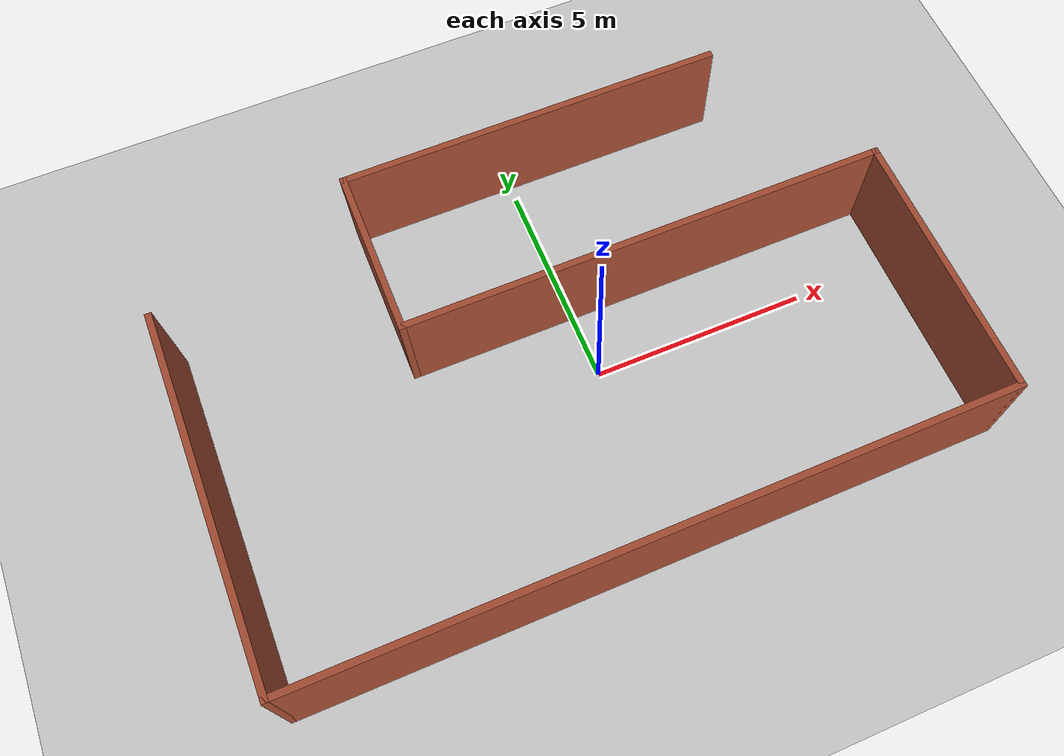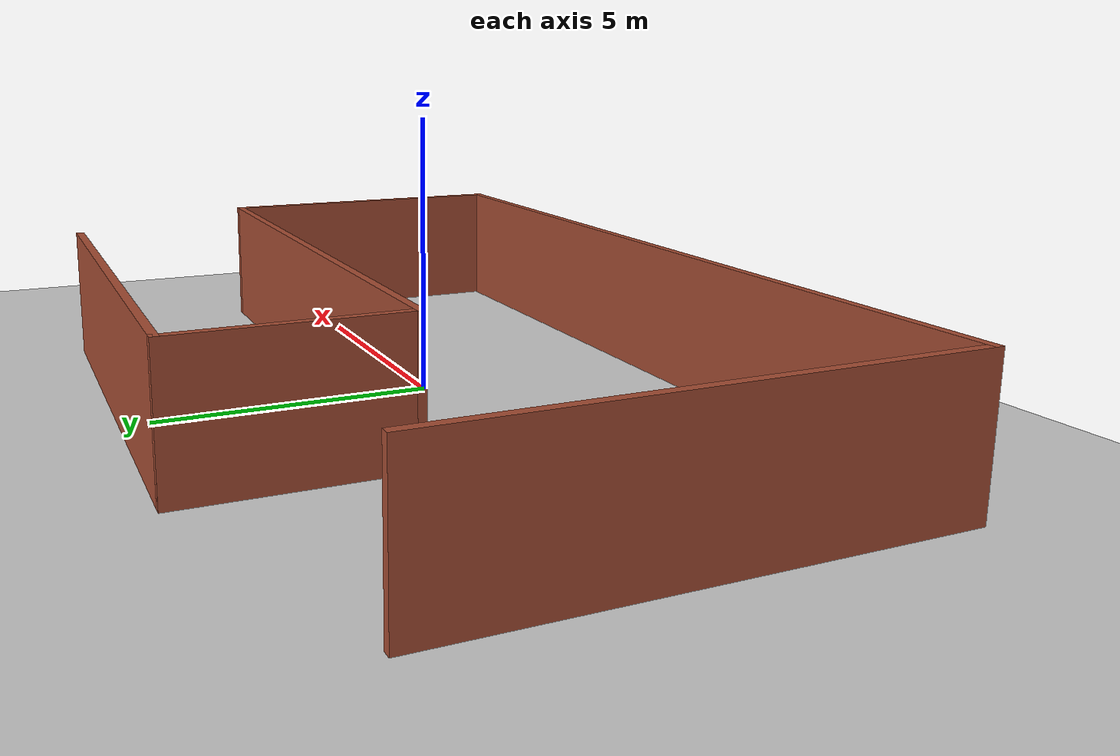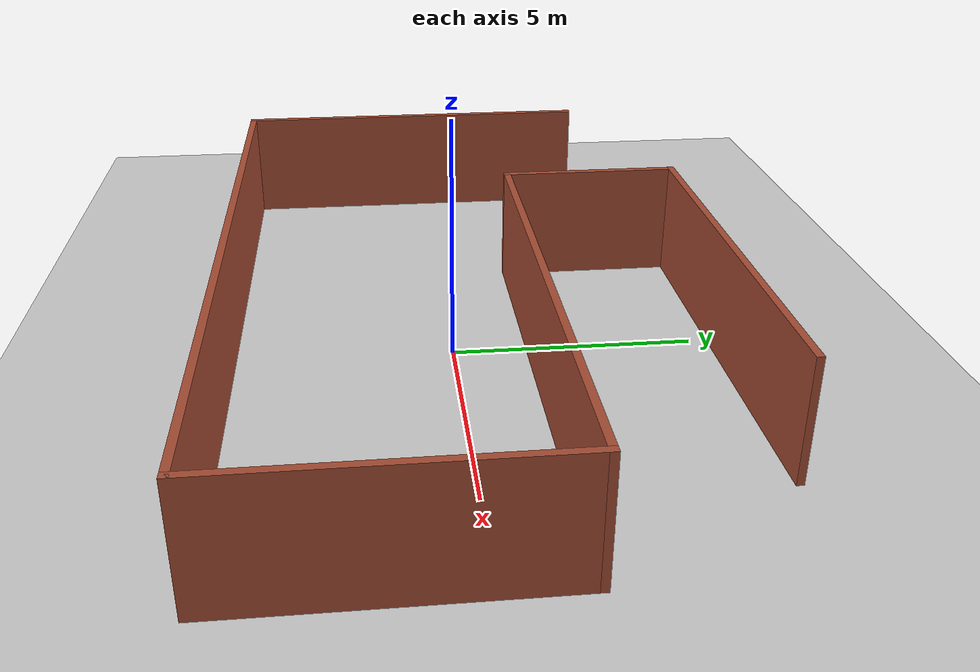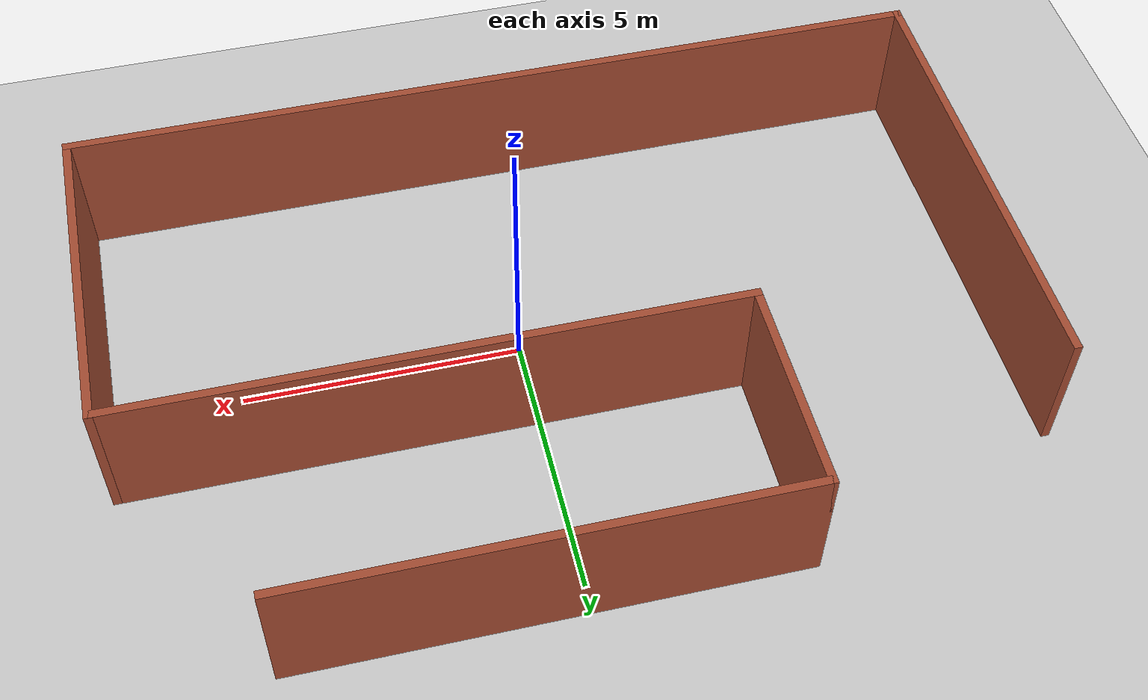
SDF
<sdf version="1.6">
 <world name="default">
  <light name="sun" type="directional">
   <pose>0 0 10 0 -0 0</pose>
   <diffuse>0.8 0.8 0.8 1</diffuse>
   <specular>0.2 0.2 0.2 1</specular>
   <attenuation>
    <range>1000</range>
    <constant>0.9</constant>
    <linear>0.01</linear>
    <quadratic>0.001</quadratic>
   </attenuation>
   <direction>-0.5 0.1 -0.9</direction>
  </light>
  <model name="ground_plane">
   <static>1</static>
   <link name="link">
    <collision name="collision">
     <geometry><plane><normal>0 0 1</normal><size>100 100</size></plane></geometry>
     <surface>
      <contact><collide_bitmask>65535</collide_bitmask></contact>
      <friction><ode><mu>100</mu><mu2>50</mu2></ode></friction>
     </surface>
    </collision>
    <visual name="visual">
     <cast_shadows>0</cast_shadows>
     <geometry><plane><normal>0 0 1</normal><size>100 100</size></plane></geometry>
     <material>
      <script><uri>file://media/materials/scripts/gazebo.material</uri><name>Gazebo/Grey</name></script>
     </material>
    </visual>
   </link>
  </model>
  <gravity>0 0 -9.8</gravity>
  <magnetic_field>6e-06 2.3e-05 -4.2e-05</magnetic_field>
  <atmosphere type="adiabatic"/>
  <physics name="default_physics" default="0" type="ode">
   <max_step_size>0.001</max_step_size>
   <real_time_factor>1</real_time_factor>
   <real_time_update_rate>1000</real_time_update_rate>
  </physics>
  <scene><ambient>0.4 0.4 0.4 1</ambient><background>0.7 0.7 0.7 1</background><shadows>1</shadows></scene>
  <spherical_coordinates>
   <surface_model>EARTH_WGS84</surface_model>
   <latitude_deg>0</latitude_deg>
   <longitude_deg>0</longitude_deg>
   <elevation>0</elevation>
   <heading_deg>0</heading_deg>
  </spherical_coordinates>
  <model name="test">
   <pose>-0.60133 0.468645 0 0 -0 0</pose>
   <link name="Wall_24">
    <collision name="Wall_24_Collision">
     <geometry><box><size>8.5 0.15 2.5</size></box></geometry>
     <pose>0 0 1.25 0 -0 0</pose>
    </collision>
    <visual name="Wall_24_Visual">
     <pose>0 0 1.25 0 -0 0</pose>
     <geometry><box><size>8.5 0.15 2.5</size></box></geometry>
     <material>
      <script><uri>file://media/materials/scripts/gazebo.material</uri><name>Gazebo/Bricks</name></script>
      <ambient>1 1 1 1</ambient>
     </material>
     <meta><layer>0</layer></meta>
    </visual>
    <pose>-7.925 -0.8 0 0 -0 -1.5708</pose>
   </link>
   <link name="Wall_25">
    <collision name="Wall_25_Collision">
     <geometry><box><size>16 0.15 2.5</size></box></geometry>
     <pose>0 0 1.25 0 -0 0</pose>
    </collision>
    <visual name="Wall_25_Visual">
     <pose>0 0 1.25 0 -0 0</pose>
     <geometry><box><size>16 0.15 2.5</size></box></geometry>
     <material>
      <script><uri>file://media/materials/scripts/gazebo.material</uri><name>Gazebo/Bricks</name></script>
      <ambient>1 1 1 1</ambient>
     </material>
     <meta><layer>0</layer></meta>
    </visual>
    <pose>-0 -4.975 0 0 -0 0</pose>
   </link>
   <link name="Wall_26">
    <collision name="Wall_26_Collision">
     <geometry><box><size>6.25 0.15 2.5</size></box></geometry>
     <pose>0 0 1.25 0 -0 0</pose>
    </collision>
    <visual name="Wall_26_Visual">
     <pose>0 0 1.25 0 -0 0</pose>
     <geometry><box><size>6.25 0.15 2.5</size></box></geometry>
     <material>
      <script><uri>file://media/materials/scripts/gazebo.material</uri><name>Gazebo/Bricks</name></script>
      <ambient>1 1 1 1</ambient>
     </material>
     <meta><layer>0</layer></meta>
    </visual>
    <pose>7.925 -1.925 0 0 -0 1.5708</pose>
   </link>
   <link name="Wall_27">
    <collision name="Wall_27_Collision">
     <geometry><box><size>11.25 0.15 2.5</size></box></geometry>
     <pose>0 0 1.25 0 -0 0</pose>
    </collision>
    <visual name="Wall_27_Visual">
     <pose>0 0 1.25 0 -0 0</pose>
     <geometry><box><size>11.25 0.15 2.5</size></box></geometry>
     <material>
      <script><uri>file://media/materials/scripts/gazebo.material</uri><name>Gazebo/Bricks</name></script>
      <ambient>1 1 1 1</ambient>
     </material>
     <meta><layer>0</layer></meta>
    </visual>
    <pose>2.375 1.125 0 0 -0 3.14159</pose>
   </link>
   <link name="Wall_28">
    <collision name="Wall_28_Collision">
     <geometry><box><size>4 0.15 2.5</size></box></geometry>
     <pose>0 0 1.25 0 -0 0</pose>
    </collision>
    <visual name="Wall_28_Visual">
     <pose>0 0 1.25 0 -0 0</pose>
     <geometry><box><size>4 0.15 2.5</size></box></geometry>
     <material>
      <script><uri>file://media/materials/scripts/gazebo.material</uri><name>Gazebo/Bricks</name></script>
      <ambient>1 1 1 1</ambient>
     </material>
     <meta><layer>0</layer></meta>
    </visual>
    <pose>-3.175 3.05 0 0 -0 1.5708</pose>
   </link>
   <link name="Wall_29">
    <collision name="Wall_29_Collision">
     <geometry><box><size>9 0.15 2.5</size></box></geometry>
     <pose>0 0 1.25 0 -0 0</pose>
    </collision>
    <visual name="Wall_29_Visual">
     <pose>0 0 1.25 0 -0 0</pose>
     <geometry><box><size>9 0.15 2.5</size></box></geometry>
     <material>
      <script><uri>file://media/materials/scripts/gazebo.material</uri><name>Gazebo/Bricks</name></script>
      <ambient>1 1 1 1</ambient>
     </material>
     <meta><layer>0</layer></meta>
    </visual>
    <pose>1.25 4.975 0 0 -0 0</pose>
   </link>
   <static>1</static>
  </model>
 </world>
</sdf>
